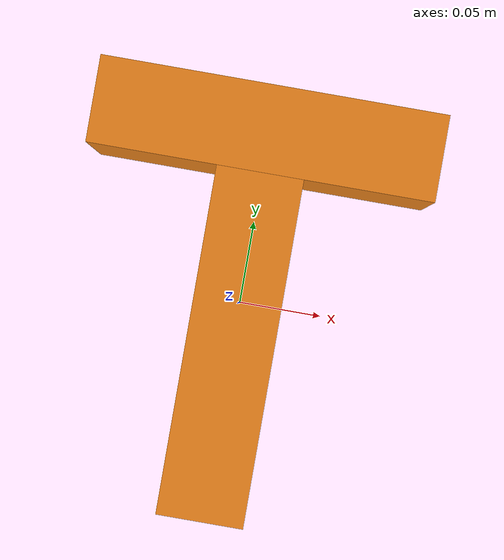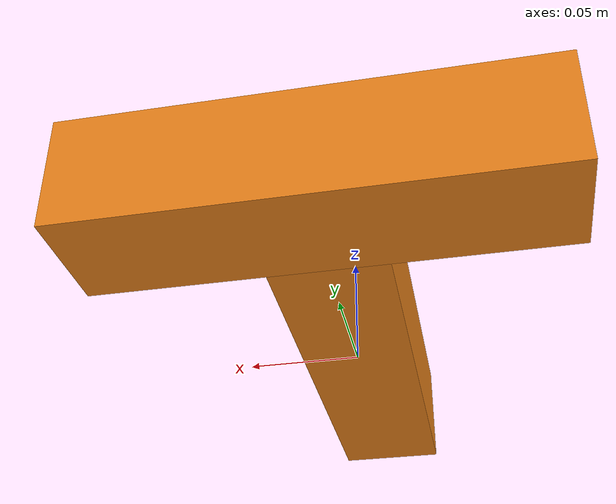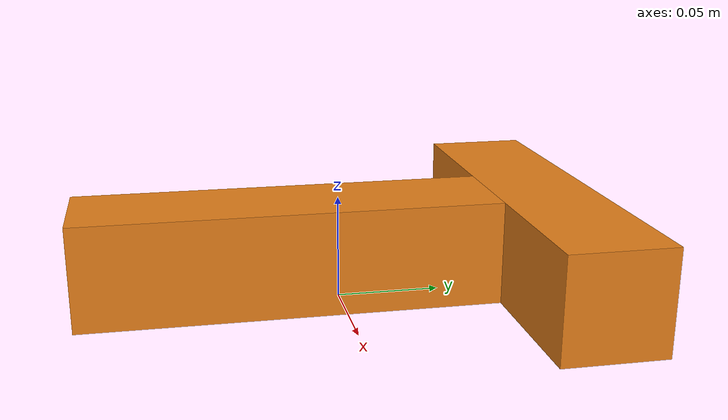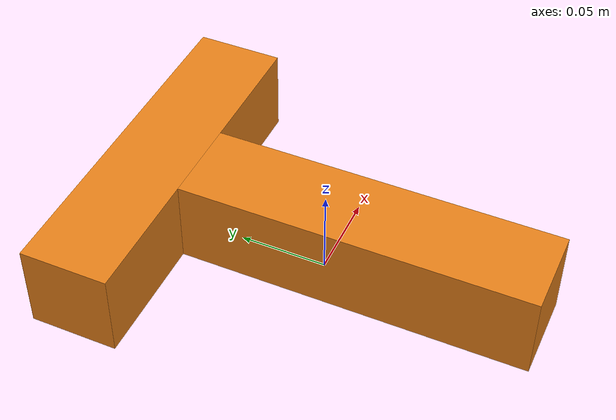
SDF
<?xml version="1.0"?>
<sdf version="1.7">
  <model name="t_block">

    <link name="t_block">

      <inertial>
        <!-- COM in link frame -->
        <pose>0 0.0375 0.025 0 0 0</pose>
        <mass>0.60</mass>
        <inertia>
          <ixx>3.531e-3</ixx>
          <iyy>1.188e-3</iyy>
          <izz>4.469e-3</izz>
          <ixy>0</ixy>
          <ixz>0</ixz>
          <iyz>0</iyz>
        </inertia>
      </inertial>

      <!-- Top bar: 20 cm × 5 cm × 5 cm, centre at (0, +0.10, +0.025) -->
      <collision name="top_bar">
        <pose>0 0.10 0.025 0 0 0</pose>
        <geometry>
          <box><size>0.20 0.05 0.05</size></box>
        </geometry>
      </collision>
      <visual name="top_bar_visual">
        <pose>0 0.10 0.025 0 0 0</pose>
        <geometry>
          <box><size>0.20 0.05 0.05</size></box>
        </geometry>
        <material>
          <ambient>0.90 0.50 0.10 1.0</ambient>
          <diffuse>0.90 0.50 0.10 1.0</diffuse>
        </material>
      </visual>

      <!-- Stem: 5 cm × 20 cm × 5 cm, centre at (0, −0.025, +0.025) -->
      <collision name="stem">
        <pose>0 -0.025 0.025 0 0 0</pose>
        <geometry>
          <box><size>0.05 0.20 0.05</size></box>
        </geometry>
      </collision>
      <visual name="stem_visual">
        <pose>0 -0.025 0.025 0 0 0</pose>
        <geometry>
          <box><size>0.05 0.20 0.05</size></box>
        </geometry>
        <material>
          <ambient>0.90 0.50 0.10 1.0</ambient>
          <diffuse>0.90 0.50 0.10 1.0</diffuse>
        </material>
      </visual>

    </link>

  </model>
</sdf>
